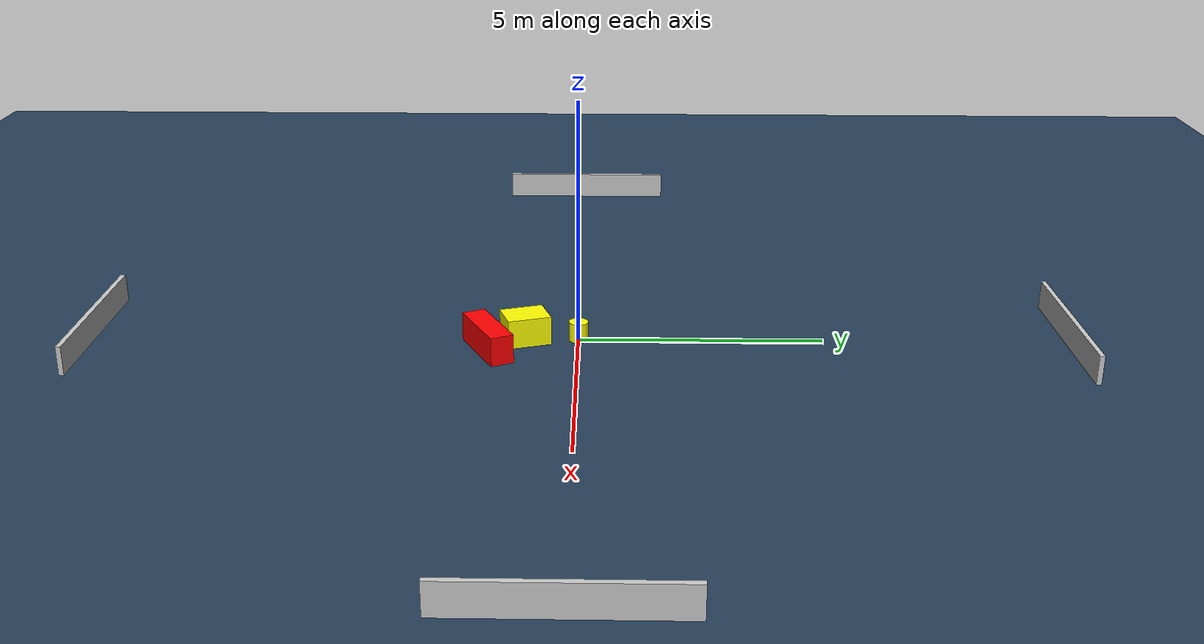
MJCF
<?xml version="1.0" ?>
<mujoco model="generated_environment">
  <option timestep="0.01" integrator="RK4" cone="elliptic"/>
  <default>
    <geom density="1"/>
  </default>
  <asset>
    <texture builtin="gradient" height="3072" name="skybox" rgb1="0.3 0.5 0.7" rgb2="0 0 0" type="skybox" width="512"/>
    <texture builtin="checker" height="300" name="groundplane" rgb1="0.2 0.3 0.4" rgb2="0.1 0.2 0.3" type="2d" width="300"/>
    <material name="groundplane" reflectance="0.2" texrepeat="5 5" texture="groundplane"/>
  </asset>
  <worldbody>
    <light dir="0 0 -1" directional="true" pos="0 0 1.5"/>
    <geom condim="3" friction="0.5 0.005 0.001" material="groundplane" name="floor" pos="0 0 0" size="0 0 0.05" type="plane"/>
    <body name="walls">
      <geom name="wall_1" condim="4" pos="-10.0 0.0 0.3" rgba="0.800000011920929 0.800000011920929 0.800000011920929 1.0" size="0.05 2.0 0.3" type="box"/>
      <geom name="wall_2" condim="4" pos="10.0 0.0 0.3" rgba="0.800000011920929 0.800000011920929 0.800000011920929 1.0" size="0.05 2.0 0.3" type="box"/>
      <geom name="wall_3" condim="4" pos="0.0 -10.0 0.3" rgba="0.800000011920929 0.800000011920929 0.800000011920929 1.0" size="2.0 0.05 0.3" type="box"/>
      <geom name="wall_4" condim="4" pos="0.0 10.0 0.3" rgba="0.800000011920929 0.800000011920929 0.800000011920929 1.0" size="2.0 0.05 0.3" type="box"/>
    </body>
    <body name="robot">
      <joint name="joint_x" type="slide" pos="0 0 0" axis="1 0 0"/>
      <joint name="joint_y" type="slide" pos="0 0 0" axis="0 1 0"/>
      <geom name="robot" type="cylinder" pos="0.0 0.0 0.2" size="0.2 0.2 0.0" mass="5.0" friction="1.0 0.005 0.0001" condim="4" rgba="1.0 1.0 0.0 1.0"/>
    </body>
    <body name="obstacle_1_movable">
      <geom name="obstacle_1_movable" condim="4" pos="0.06485752104893124 -1.0866451571831082 0.3" euler="0 0 198.3284249842714" friction="0.0 0.005 0.001" rgba="1.0 1.0 0.0 1.0" size="0.35149975076905215 0.4505303713568141 0.3" type="box" mass="0.1"/>
      <joint type="free"/>
    </body>
    <body name="obstacle_2_static">
      <geom name="obstacle_2_static" condim="4" pos="0.6310769521165099 -1.8149840707433862 0.3" euler="0 0 26.703977952765726" friction="0.0 0.005 0.001" rgba="1.0 0.0 0.0 1.0" size="0.7590462574636037 0.24320873494796585 0.3" type="box"/>
    </body>
  </worldbody>
  <actuator>
    <motor name="actuator_x" joint="joint_x" gear="1" ctrlrange="-1 1"/>
    <motor name="actuator_y" joint="joint_y" gear="1" ctrlrange="-1 1"/>
  </actuator>
</mujoco>
